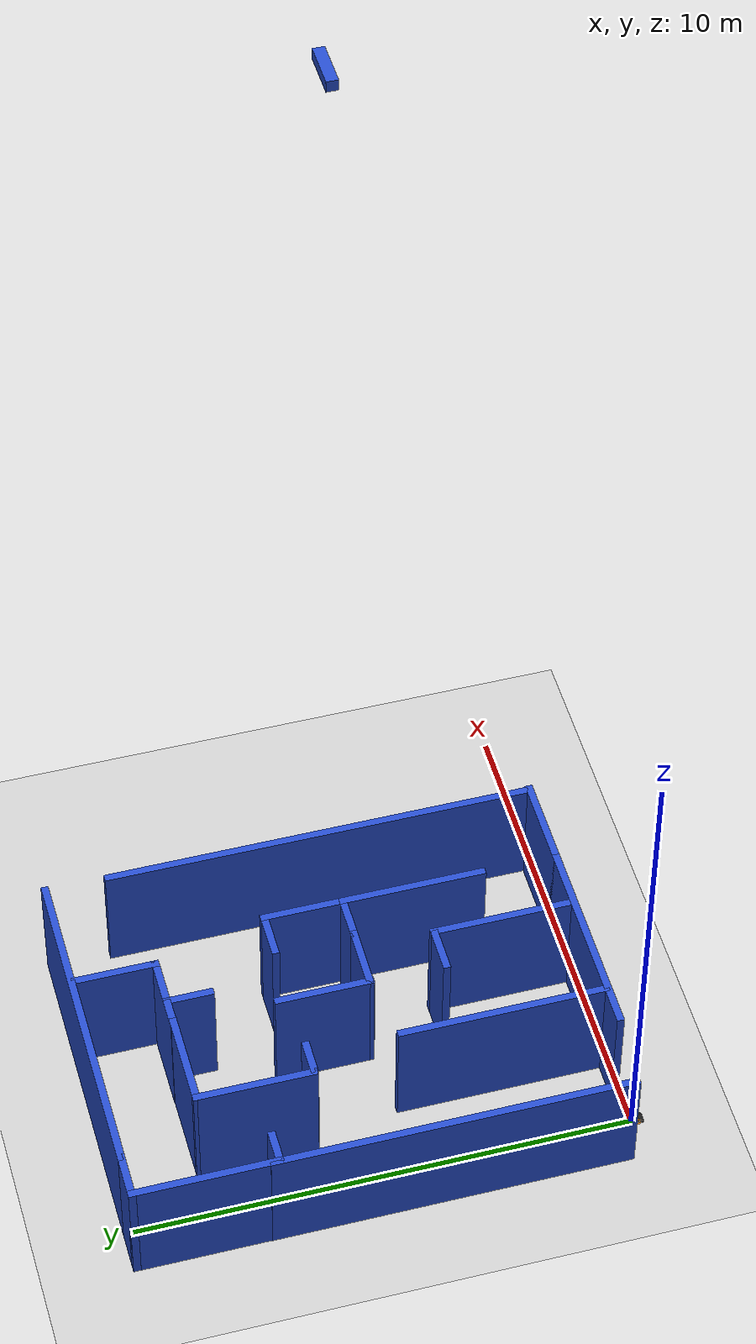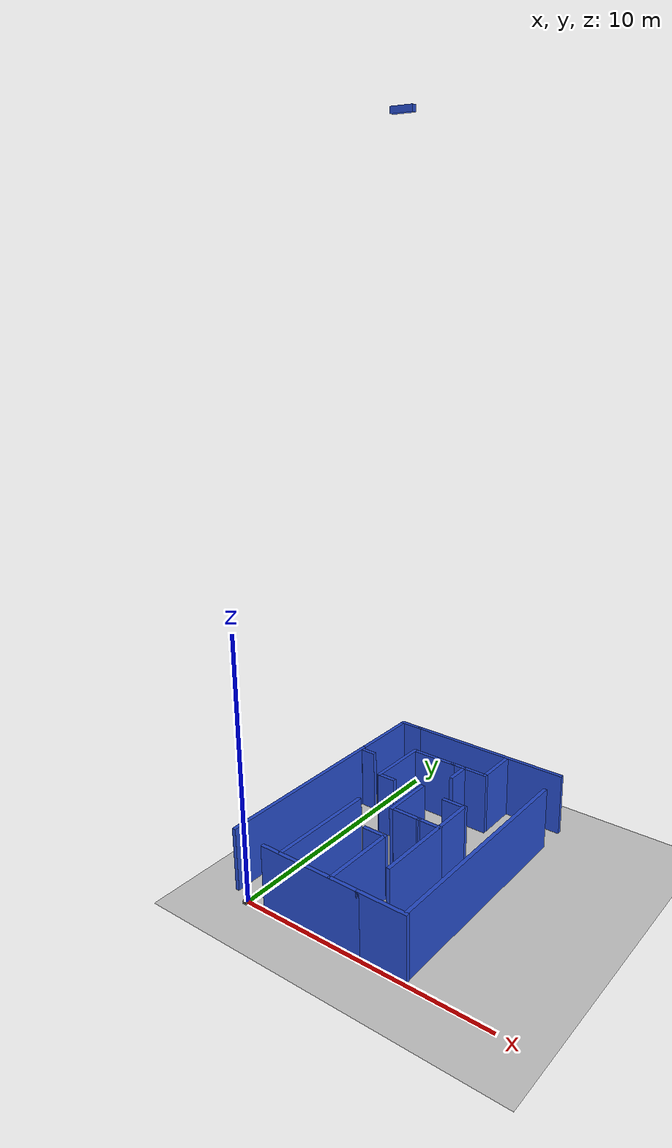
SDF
<sdf version="1.7">
 <world name="default">
  <light name="sun" type="directional">
   <pose>0 0 10 0 -0 0</pose>
   <diffuse>0.8 0.8 0.8 1</diffuse>
   <specular>0.2 0.2 0.2 1</specular>
   <attenuation>
    <range>1000</range>
    <constant>0.9</constant>
    <linear>0.01</linear>
    <quadratic>0.001</quadratic>
   </attenuation>
   <direction>-0.5 0.1 -0.9</direction>
   <spot><inner_angle>0</inner_angle><outer_angle>0</outer_angle><falloff>0</falloff></spot>
  </light>
  <model name="ground_plane">
   <static>1</static>
   <link name="link">
    <collision name="collision">
     <geometry><plane><normal>0 0 1</normal><size>100 100</size></plane></geometry>
     <surface><friction><ode><mu>100</mu><mu2>50</mu2></ode></friction></surface>
    </collision>
    <visual name="visual">
     <cast_shadows>0</cast_shadows>
     <geometry><plane><normal>0 0 1</normal><size>100 100</size></plane></geometry>
     <material>
      <script><uri>file://media/materials/scripts/gazebo.material</uri><name>Gazebo/Grey</name></script>
     </material>
    </visual>
   </link>
  </model>
  <gravity>0 0 -9.8</gravity>
  <magnetic_field>6e-06 2.3e-05 -4.2e-05</magnetic_field>
  <atmosphere type="adiabatic"/>
  <physics type="ode">
   <max_step_size>0.001</max_step_size>
   <real_time_factor>1</real_time_factor>
   <real_time_update_rate>1000</real_time_update_rate>
  </physics>
  <scene><ambient>0.4 0.4 0.4 1</ambient><background>0.7 0.7 0.7 1</background><shadows>0</shadows></scene>
  <spherical_coordinates>
   <surface_model>EARTH_WGS84</surface_model>
   <latitude_deg>0</latitude_deg>
   <longitude_deg>0</longitude_deg>
   <elevation>0</elevation>
   <heading_deg>0</heading_deg>
  </spherical_coordinates>
  <model name="maze_bot">
   <link name="base_footprint">
    <inertial>
     <pose>0 0 0.1 0 -0 0</pose>
     <mass>2</mass>
     <inertia><ixx>0.00355</ixx><ixy>0</ixy><ixz>0</ixz><iyy>0.01265</iyy><iyz>0</iyz><izz>0.013832</izz></inertia>
    </inertial>
    <collision name="base_footprint_fixed_joint_lump__base_collision">
     <geometry><mesh><scale>1 1 1</scale><uri>model://maze_bot/meshes/base_link.stl</uri></mesh></geometry>
    </collision>
    <visual name="base_footprint_fixed_joint_lump__base_visual">
     <geometry><mesh><scale>1 1 1</scale><uri>model://maze_bot/meshes/base_link.stl</uri></mesh></geometry>
     <material>
      <script><name>Gazebo/Black</name><uri>file://media/materials/scripts/gazebo.material</uri></script>
     </material>
    </visual>
    <sensor name="Botcamera" type="camera">
     <update_rate>30</update_rate>
     <camera name="head">
      <horizontal_fov>1.39626</horizontal_fov>
      <image><width>800</width><height>800</height><format>R8G8B8</format></image>
      <clip><near>0.02</near><far>300</far></clip>
      <noise><type>gaussian</type><mean>0</mean><stddev>0.007</stddev></noise>
     </camera>
     <plugin name="camera_controller" filename="libgazebo_ros_camera.so">
      <alwaysOn>1</alwaysOn>
      <updateRate>0.0</updateRate>
      <cameraName>/Botcamera</cameraName>
      <imageTopicName>image_raw</imageTopicName>
      <cameraInfoTopicName>camera_info</cameraInfoTopicName>
      <frameName>camera_link</frameName>
      <hackBaseline>0.07</hackBaseline>
     </plugin>
     <pose>-0.16 0 0.08 0 -0 3.14</pose>
    </sensor>
   </link>
   <joint name="caster_joint" type="revolute">
    <pose relative_to="base_footprint">-0.14 -0.007 -0.03 0 -0 0</pose>
    <parent>base_footprint</parent>
    <child>caster</child>
    <axis>
     <xyz>0 0 1</xyz>
     <limit><lower>-1e+16</lower><upper>1e+16</upper></limit>
     <dynamics><spring_reference>0</spring_reference><spring_stiffness>0</spring_stiffness></dynamics>
    </axis>
   </joint>
   <link name="caster">
    <pose relative_to="caster_joint">0 0 0 0 -0 0</pose>
    <inertial>
     <mass>0.75</mass>
     <inertia>
      <ixx>0.0001295</ixx>
      <ixy>0</ixy>
      <ixz>0</ixz>
      <iyy>0.0001295</iyy>
      <iyz>0</iyz>
      <izz>0.000199322</izz>
     </inertia>
    </inertial>
    <collision name="caster_collision">
     <geometry><mesh><scale>1 1 1</scale><uri>model://maze_bot/meshes/front_caster.stl</uri></mesh></geometry>
    </collision>
    <visual name="caster_visual">
     <geometry><mesh><scale>1 1 1</scale><uri>model://maze_bot/meshes/front_caster.stl</uri></mesh></geometry>
     <material>
      <script><name>Gazebo/White</name><uri>file://media/materials/scripts/gazebo.material</uri></script>
     </material>
    </visual>
   </link>
   <joint name="wheel_left_joint" type="revolute">
    <pose relative_to="base_footprint">0.09 -0.1 0.04 0 -0 3.14</pose>
    <parent>base_footprint</parent>
    <child>wheel_left</child>
    <axis>
     <xyz>0 1 0</xyz>
     <limit><lower>-1e+16</lower><upper>1e+16</upper></limit>
     <dynamics><spring_reference>0</spring_reference><spring_stiffness>0</spring_stiffness></dynamics>
    </axis>
   </joint>
   <link name="wheel_left">
    <pose relative_to="wheel_left_joint">0 0 0 0 -0 0</pose>
    <inertial>
     <mass>0.75</mass>
     <inertia>
      <ixx>0.00144422</ixx>
      <ixy>0</ixy>
      <ixz>0</ixz>
      <iyy>0.00280875</iyy>
      <iyz>0</iyz>
      <izz>0.00144422</izz>
     </inertia>
    </inertial>
    <collision name="wheel_left_collision">
     <geometry><mesh><scale>1 1 1</scale><uri>model://maze_bot/meshes/wheel_l.stl</uri></mesh></geometry>
    </collision>
    <visual name="wheel_left_visual">
     <geometry><mesh><scale>1 1 1</scale><uri>model://maze_bot/meshes/wheel_l.stl</uri></mesh></geometry>
     <material>
      <script><name>Gazebo/Orange</name><uri>file://media/materials/scripts/gazebo.material</uri></script>
     </material>
    </visual>
   </link>
   <joint name="wheel_right_joint" type="revolute">
    <pose relative_to="base_footprint">0.09 0.085 0.04 0 -0 0</pose>
    <parent>base_footprint</parent>
    <child>wheel_right</child>
    <axis>
     <xyz>0 -1 0</xyz>
     <limit><lower>-1e+16</lower><upper>1e+16</upper></limit>
     <dynamics><spring_reference>0</spring_reference><spring_stiffness>0</spring_stiffness></dynamics>
    </axis>
   </joint>
   <link name="wheel_right">
    <pose relative_to="wheel_right_joint">0 0 0 0 -0 0</pose>
    <inertial>
     <mass>0.75</mass>
     <inertia>
      <ixx>0.00144422</ixx>
      <ixy>0</ixy>
      <ixz>0</ixz>
      <iyy>0.00280875</iyy>
      <iyz>0</iyz>
      <izz>0.00144422</izz>
     </inertia>
    </inertial>
    <collision name="wheel_right_collision">
     <geometry><mesh><scale>1 1 1</scale><uri>model://maze_bot/meshes/wheel_r.stl</uri></mesh></geometry>
    </collision>
    <visual name="wheel_right_visual">
     <geometry><mesh><scale>1 1 1</scale><uri>model://maze_bot/meshes/wheel_r.stl</uri></mesh></geometry>
     <material>
      <script><name>Gazebo/Orange</name><uri>file://media/materials/scripts/gazebo.material</uri></script>
     </material>
    </visual>
   </link>
   <static>0</static>
   <plugin name="gazebo_base_controller" filename="libgazebo_ros_diff_drive.so">
    <odometry_frame>odom</odometry_frame>
    <commandTopic>cmd_vel</commandTopic>
    <publish_odom>1</publish_odom>
    <publish_odom_tf>1</publish_odom_tf>
    <update_rate>15.0</update_rate>
    <left_joint>wheel_left_joint</left_joint>
    <right_joint>wheel_right_joint</right_joint>
    <wheel_separation>0.8</wheel_separation>
    <wheel_diameter>0.3</wheel_diameter>
    <max_wheel_acceleration>0.7</max_wheel_acceleration>
    <robotBaseFrame>base</robotBaseFrame>
   </plugin>
   <pose>0.004378 -0.014617 0.035376 0.000297 0.059663 -1.6037</pose>
  </model>
  <model name="Maze">
   <pose>2.94361 5.1356 0 0 -0 0</pose>
   <link name="Wall_21">
    <collision name="Wall_21_Collision">
     <geometry><box><size>4.25 0.15 2.5</size></box></geometry>
     <pose>0 0 1.25 0 -0 0</pose>
    </collision>
    <visual name="Wall_21_Visual">
     <pose>0 0 1.25 0 -0 0</pose>
     <geometry><box><size>4.25 0.15 2.5</size></box></geometry>
     <material>
      <script><uri>file://media/materials/scripts/gazebo.material</uri><name>Gazebo/Blue</name></script>
      <ambient>0.996078 0.47451 0.0196078 1</ambient>
     </material>
     <meta><layer>0</layer></meta>
    </visual>
    <pose>-0.166584 -4.99211 0 0 -0 0</pose>
   </link>
   <link name="Wall_23">
    <collision name="Wall_23_Collision">
     <geometry><box><size>4.25 0.15 2.5</size></box></geometry>
     <pose>0 0 1.25 0 -0 0</pose>
    </collision>
    <visual name="Wall_23_Visual">
     <pose>0 0 1.25 0 -0 0</pose>
     <geometry><box><size>4.25 0.15 2.5</size></box></geometry>
     <material>
      <script><uri>file://media/materials/scripts/gazebo.material</uri><name>Gazebo/Blue</name></script>
      <ambient>0 0 0 1</ambient>
     </material>
     <meta><layer>0</layer></meta>
    </visual>
    <pose>-1.47697 -2.88891 0 0 -0 1.5708</pose>
   </link>
   <link name="Wall_25">
    <collision name="Wall_25_Collision">
     <geometry><box><size>7.25 0.15 2.5</size></box></geometry>
     <pose>0 0 1.25 0 -0 0</pose>
    </collision>
    <visual name="Wall_25_Visual">
     <pose>0 0 1.25 0 -0 0</pose>
     <geometry><box><size>7.25 0.15 2.5</size></box></geometry>
     <material>
      <script><uri>file://media/materials/scripts/gazebo.material</uri><name>Gazebo/Blue</name></script>
      <ambient>0.996078 0.47451 0.0196078 1</ambient>
     </material>
     <meta><layer>0</layer></meta>
    </visual>
    <pose>-3.73341 -1.28759 0 0 -0 1.5708</pose>
   </link>
   <link name="Wall_30">
    <collision name="Wall_30_Collision">
     <geometry><box><size>0.75 0.15 2.5</size></box></geometry>
     <pose>0 0 1.25 0 -0 0</pose>
    </collision>
    <visual name="Wall_30_Visual">
     <pose>0 0 1.25 0 -0 0</pose>
     <geometry><box><size>0.75 0.15 2.5</size></box></geometry>
     <material>
      <script><uri>file://media/materials/scripts/gazebo.material</uri><name>Gazebo/Blue</name></script>
      <ambient>0 0 0 1</ambient>
     </material>
     <meta><layer>0</layer></meta>
    </visual>
    <pose>-1.56741 0.99221 0 0 -0 0</pose>
   </link>
   <link name="Wall_34">
    <collision name="Wall_34_Collision">
     <geometry><box><size>1.3428 0.15 2.5</size></box></geometry>
     <pose>0 0 1.25 0 -0 0</pose>
    </collision>
    <visual name="Wall_34_Visual">
     <pose>0 0 1.25 0 -0 0</pose>
     <geometry><box><size>1.3428 0.15 2.5</size></box></geometry>
     <material>
      <script><uri>file://media/materials/scripts/gazebo.material</uri><name>Gazebo/Blue</name></script>
      <ambient>0 0 0 1</ambient>
     </material>
     <meta><layer>0</layer></meta>
    </visual>
    <pose>0.487086 -0.59755 0 0 -0 -0.009643</pose>
   </link>
   <link name="Wall_35">
    <collision name="Wall_35_Collision">
     <geometry><box><size>1 0.15 2.5</size></box></geometry>
     <pose>0 0 1.25 0 -0 0</pose>
    </collision>
    <visual name="Wall_35_Visual">
     <pose>0 0 1.25 0 -0 0</pose>
     <geometry><box><size>1 0.15 2.5</size></box></geometry>
     <material>
      <script><uri>file://media/materials/scripts/gazebo.material</uri><name>Gazebo/Blue</name></script>
      <ambient>0 0 0 1</ambient>
     </material>
     <meta><layer>0</layer></meta>
    </visual>
    <pose>1.50837 -0.6033 0 0 -0 0</pose>
   </link>
   <link name="Wall_36">
    <collision name="Wall_36_Collision">
     <geometry><box><size>1.75 0.15 2.5</size></box></geometry>
     <pose>0 0 1.25 0 -0 0</pose>
    </collision>
    <visual name="Wall_36_Visual">
     <pose>0 0 1.25 0 -0 0</pose>
     <geometry><box><size>1.75 0.15 2.5</size></box></geometry>
     <material>
      <script><uri>file://media/materials/scripts/gazebo.material</uri><name>Gazebo/Blue</name></script>
      <ambient>0 0 0 1</ambient>
     </material>
     <meta><layer>0</layer></meta>
    </visual>
    <pose>1.93337 0.1967 0 0 -0 1.5708</pose>
   </link>
   <link name="Wall_37">
    <collision name="Wall_37_Collision">
     <geometry><box><size>1 0.15 2.5</size></box></geometry>
     <pose>0 0 1.25 0 -0 0</pose>
    </collision>
    <visual name="Wall_37_Visual">
     <pose>0 0 1.25 0 -0 0</pose>
     <geometry><box><size>1 0.15 2.5</size></box></geometry>
     <material>
      <script><uri>file://media/materials/scripts/gazebo.material</uri><name>Gazebo/Blue</name></script>
      <ambient>0 0 0 1</ambient>
     </material>
     <meta><layer>0</layer></meta>
    </visual>
    <pose>1.50837 0.9967 0 0 -0 3.14159</pose>
   </link>
   <link name="Wall_39">
    <collision name="Wall_39_Collision">
     <geometry><box><size>3 0.15 2.5</size></box></geometry>
     <pose>0 0 1.25 0 -0 0</pose>
    </collision>
    <visual name="Wall_39_Visual">
     <pose>0 0 1.25 0 -0 0</pose>
     <geometry><box><size>3 0.15 2.5</size></box></geometry>
     <material>
      <script><uri>file://media/materials/scripts/gazebo.material</uri><name>Gazebo/Blue</name></script>
      <ambient>0 0 0 1</ambient>
     </material>
     <meta><layer>0</layer></meta>
    </visual>
    <pose>1.93337 -2.0283 0 0 -0 -1.5708</pose>
   </link>
   <link name="Wall_41">
    <collision name="Wall_41_Collision">
     <geometry><box><size>3 0.15 2.5</size></box></geometry>
     <pose>0 0 1.25 0 -0 0</pose>
    </collision>
    <visual name="Wall_41_Visual">
     <pose>0 0 1.25 0 -0 0</pose>
     <geometry><box><size>3 0.15 2.5</size></box></geometry>
     <material>
      <script><uri>file://media/materials/scripts/gazebo.material</uri><name>Gazebo/Blue</name></script>
      <ambient>0 0 0 1</ambient>
     </material>
     <meta><layer>0</layer></meta>
    </visual>
    <pose>0.727679 -3.55281 0 0 -0 1.5708</pose>
   </link>
   <link name="Wall_43">
    <collision name="Wall_43_Collision">
     <geometry><box><size>1 0.15 2.5</size></box></geometry>
     <pose>0 0 1.25 0 -0 0</pose>
    </collision>
    <visual name="Wall_43_Visual">
     <pose>0 0 1.25 0 -0 0</pose>
     <geometry><box><size>1 0.15 2.5</size></box></geometry>
     <material>
      <script><uri>file://media/materials/scripts/gazebo.material</uri><name>Gazebo/Blue</name></script>
      <ambient>0 0 0 1</ambient>
     </material>
     <meta><layer>0</layer></meta>
    </visual>
    <pose>0.302679 -2.12782 0 0 -0 3.14159</pose>
   </link>
   <link name="Wall_46">
    <collision name="Wall_46_Collision">
     <geometry><box><size>1.64061 0.15 2.5</size></box></geometry>
     <pose>0 0 1.25 0 -0 0</pose>
    </collision>
    <visual name="Wall_46_Visual">
     <pose>0 0 1.25 0 -0 0</pose>
     <geometry><box><size>1.64061 0.15 2.5</size></box></geometry>
     <material>
      <script><uri>file://media/materials/scripts/gazebo.material</uri><name>Gazebo/Blue</name></script>
      <ambient>0 0 0 1</ambient>
     </material>
     <meta><layer>0</layer></meta>
    </visual>
    <pose>0.633461 3.31645 0 0 -0 0</pose>
   </link>
   <link name="Wall_52">
    <collision name="Wall_52_Collision">
     <geometry><box><size>2.44702 0.15 2.5</size></box></geometry>
     <pose>0 0 1.25 0 -0 0</pose>
    </collision>
    <visual name="Wall_52_Visual">
     <pose>0 0 1.25 0 -0 0</pose>
     <geometry><box><size>2.44702 0.15 2.5</size></box></geometry>
     <material>
      <script><uri>file://media/materials/scripts/gazebo.material</uri><name>Gazebo/Blue</name></script>
      <ambient>0 0 0 1</ambient>
     </material>
     <meta><layer>0</layer></meta>
    </visual>
    <pose>-1.91791 2.16081 0 0 -0 1.56844</pose>
   </link>
   <link name="Wall_53">
    <collision name="Wall_53_Collision">
     <geometry><box><size>2 0.15 2.5</size></box></geometry>
     <pose>0 0 1.25 0 -0 0</pose>
    </collision>
    <visual name="Wall_53_Visual">
     <pose>0 0 1.25 0 -0 0</pose>
     <geometry><box><size>2 0.15 2.5</size></box></geometry>
     <material>
      <script><uri>file://media/materials/scripts/gazebo.material</uri><name>Gazebo/Blue</name></script>
      <ambient>0 0 0 1</ambient>
     </material>
     <meta><layer>0</layer></meta>
    </visual>
    <pose>-0.99021 3.30921 0 0 -0 0</pose>
   </link>
   <link name="Wall_61">
    <collision name="Wall_61_Collision">
     <geometry><box><size>1 0.15 2.5</size></box></geometry>
     <pose>0 0 1.25 0 -0 0</pose>
    </collision>
    <visual name="Wall_61_Visual">
     <pose>0 0 1.25 0 -0 0</pose>
     <geometry><box><size>1 0.15 2.5</size></box></geometry>
     <material>
      <script><uri>file://media/materials/scripts/gazebo.material</uri><name>Gazebo/Blue</name></script>
      <ambient>0.996078 0.47451 0.0196078 1</ambient>
     </material>
     <meta><layer>0</layer></meta>
    </visual>
    <pose>-3.30144 4.99211 0 0 -0 3.14159</pose>
   </link>
   <link name="Wall_63">
    <collision name="Wall_63_Collision">
     <geometry><box><size>3 0.15 2.5</size></box></geometry>
     <pose>0 0 1.25 0 -0 0</pose>
    </collision>
    <visual name="Wall_63_Visual">
     <pose>0 0 1.25 0 -0 0</pose>
     <geometry><box><size>3 0.15 2.5</size></box></geometry>
     <material>
      <script><uri>file://media/materials/scripts/gazebo.material</uri><name>Gazebo/Blue</name></script>
      <ambient>0.996078 0.47451 0.0196078 1</ambient>
     </material>
     <meta><layer>0</layer></meta>
    </visual>
    <pose>-3.72644 3.56711 0 0 -0 -1.5708</pose>
   </link>
   <link name="Wall_65">
    <collision name="Wall_65_Collision">
     <geometry><box><size>6.75 0.15 2.5</size></box></geometry>
     <pose>0 0 1.25 0 -0 0</pose>
    </collision>
    <visual name="Wall_65_Visual">
     <pose>0 0 1.25 0 -0 0</pose>
     <geometry><box><size>6.75 0.15 2.5</size></box></geometry>
     <material>
      <script><uri>file://media/materials/scripts/gazebo.material</uri><name>Gazebo/Blue</name></script>
      <ambient>0.996078 0.47451 0.0196078 1</ambient>
     </material>
     <meta><layer>0</layer></meta>
    </visual>
    <pose>0.42356 4.99211 0 0 -0 0</pose>
   </link>
   <link name="Wall_67">
    <collision name="Wall_67_Collision">
     <geometry><box><size>8.75 0.15 2.5</size></box></geometry>
     <pose>0 0 1.25 0 -0 0</pose>
    </collision>
    <visual name="Wall_67_Visual">
     <pose>0 0 1.25 0 -0 0</pose>
     <geometry><box><size>8.75 0.15 2.5</size></box></geometry>
     <material>
      <script><uri>file://media/materials/scripts/gazebo.material</uri><name>Gazebo/Blue</name></script>
      <ambient>0.996078 0.47451 0.0196078 1</ambient>
     </material>
     <meta><layer>0</layer></meta>
    </visual>
    <pose>3.70855 -0.575644 0 0 -0 -1.5708</pose>
   </link>
   <link name="Wall_69">
    <collision name="Wall_69_Collision">
     <geometry><box><size>2 0.15 2.5</size></box></geometry>
     <pose>0 0 1.25 0 -0 0</pose>
    </collision>
    <visual name="Wall_69_Visual">
     <pose>0 0 1.25 0 -0 0</pose>
     <geometry><box><size>2 0.15 2.5</size></box></geometry>
     <material>
      <script><uri>file://media/materials/scripts/gazebo.material</uri><name>Gazebo/Blue</name></script>
      <ambient>0.996078 0.47451 0.0196078 1</ambient>
     </material>
     <meta><layer>0</layer></meta>
    </visual>
    <pose>2.80842 -4.99211 0 0 -0 0</pose>
   </link>
   <link name="Wall_71">
    <collision name="Wall_71_Collision">
     <geometry><box><size>0.75 0.15 2.5</size></box></geometry>
     <pose>0 0 1.25 0 -0 0</pose>
    </collision>
    <visual name="Wall_71_Visual">
     <pose>0 0 1.25 0 -0 0</pose>
     <geometry><box><size>0.75 0.15 2.5</size></box></geometry>
     <material>
      <script><uri>file://media/materials/scripts/gazebo.material</uri><name>Gazebo/Blue</name></script>
      <ambient>0 0 0 1</ambient>
     </material>
     <meta><layer>0</layer></meta>
    </visual>
    <pose>-3.42644 2.14211 0 0 -0 0</pose>
   </link>
   <link name="Wall_73">
    <collision name="Wall_73_Collision">
     <geometry><box><size>2 0.15 2.5</size></box></geometry>
     <pose>0 0 1.25 0 -0 0</pose>
    </collision>
    <visual name="Wall_73_Visual">
     <pose>0 0 1.25 0 -0 0</pose>
     <geometry><box><size>2 0.15 2.5</size></box></geometry>
     <material>
      <script><uri>file://media/materials/scripts/gazebo.material</uri><name>Gazebo/Blue</name></script>
      <ambient>0 0 0 1</ambient>
     </material>
     <meta><layer>0</layer></meta>
    </visual>
    <pose>-0.109202 0.3217 0 0 -0 1.5708</pose>
   </link>
   <link name="Wall_79">
    <collision name="Wall_79_Collision">
     <geometry><box><size>1.75 0.15 2.5</size></box></geometry>
     <pose>0 0 1.25 0 -0 0</pose>
    </collision>
    <visual name="Wall_79_Visual">
     <pose>0 0 1.25 0 -0 0</pose>
     <geometry><box><size>1.75 0.15 2.5</size></box></geometry>
     <material>
      <script><uri>file://media/materials/scripts/gazebo.material</uri><name>Gazebo/Blue</name></script>
      <ambient>0 0 0 1</ambient>
     </material>
     <meta><layer>0</layer></meta>
    </visual>
    <pose>1.37874 4.11646 0 0 -0 1.5708</pose>
   </link>
   <link name="Wall_81">
    <collision name="Wall_81_Collision">
     <geometry><box><size>1 0.15 2.5</size></box></geometry>
     <pose>0 0 1.25 0 -0 0</pose>
    </collision>
    <visual name="Wall_81_Visual">
     <pose>0 0 1.25 0 -0 0</pose>
     <geometry><box><size>1 0.15 2.5</size></box></geometry>
     <material>
      <script><uri>file://media/materials/scripts/gazebo.material</uri><name>Gazebo/Blue</name></script>
      <ambient>0 0 0  1</ambient>
     </material>
     <meta><layer>0</layer></meta>
    </visual>
    <pose>0.438493 2.88286 0 0 -0 -1.5708</pose>
   </link>
   <static>1</static>
  </model>
  <model name="satellite">
   <link name="link_0">
    <inertial>
     <mass>1</mass>
     <inertia>
      <ixx>0.166667</ixx>
      <ixy>0</ixy>
      <ixz>0</ixz>
      <iyy>0.166667</iyy>
      <iyz>0</iyz>
      <izz>0.166667</izz>
     </inertia>
    </inertial>
    <pose>0 2e-06 4.4e-05 0 -0 0</pose>
    <visual name="visual">
     <geometry><box><size>0.8 0.2 0.2</size></box></geometry>
     <material>
      <lighting>1</lighting>
      <script><uri>file://media/materials/scripts/gazebo.material</uri><name>Gazebo/Blue</name></script>
      <shader type="pixel"><normal_map>__default__</normal_map></shader>
      <ambient>0.3 0.3 0.3 1</ambient>
      <diffuse>0.7 0.7 0.7 1</diffuse>
      <specular>0.01 0.01 0.01 1</specular>
      <emissive>0 0 0 1</emissive>
     </material>
     <cast_shadows>0</cast_shadows>
    </visual>
    <collision name="collision">
     <geometry><box><size>0.8 0.2 0.2</size></box></geometry>
     <surface>
      <friction>
       <ode><mu>1</mu><mu2>1</mu2><fdir1>0 0 0</fdir1><slip1>0</slip1><slip2>0</slip2></ode>
       <torsional>
        <coefficient>1</coefficient>
        <patch_radius>0</patch_radius>
        <surface_radius>0</surface_radius>
        <use_patch_radius>1</use_patch_radius>
        <ode><slip>0</slip></ode>
       </torsional>
      </friction>
      <bounce><restitution_coefficient>0</restitution_coefficient><threshold>1e+06</threshold></bounce>
      <contact>
       <collide_without_contact>0</collide_without_contact>
       <collide_without_contact_bitmask>1</collide_without_contact_bitmask>
       <collide_bitmask>1</collide_bitmask>
       <ode>
        <soft_cfm>0</soft_cfm>
        <soft_erp>0.2</soft_erp>
        <kp>1e+13</kp>
        <kd>1</kd>
        <max_vel>0.01</max_vel>
        <min_depth>0</min_depth>
       </ode>
       <bullet>
        <split_impulse>1</split_impulse>
        <split_impulse_penetration_threshold>-0.01</split_impulse_penetration_threshold>
        <soft_cfm>0</soft_cfm>
        <soft_erp>0.2</soft_erp>
        <kp>1e+13</kp>
        <kd>1</kd>
       </bullet>
      </contact>
     </surface>
    </collision>
    <sensor name="upper_camera" type="camera">
     <pose>0 0 0 0 1.57 0</pose>
     <update_rate>30</update_rate>
     <visualize>1</visualize>
     <camera name="head">
      <horizontal_fov>1.0856</horizontal_fov>
      <image><width>1280</width><height>720</height><format>R8G8B8</format></image>
      <clip><near>0.03</near><far>100</far></clip>
      <noise><type>gaussian</type><mean>0</mean><stddev>0.007</stddev></noise>
     </camera>
     <plugin name="camera_controller_upper" filename="libgazebo_ros_camera.so">
      <alwaysOn>1</alwaysOn>
      <updateRate>0.0</updateRate>
      <cameraName>rrbot/camera1</cameraName>
      <imageTopicName>image_raw</imageTopicName>
      <cameraInfoTopicName>camera_info</cameraInfoTopicName>
      <frameName>camera_link</frameName>
      <hackBaseline>0.07</hackBaseline>
      <distortionK1>0.0</distortionK1>
      <distortionK2>0.0</distortionK2>
      <distortionK3>0.0</distortionK3>
      <distortionT1>0.0</distortionT1>
      <distortionT2>0.0</distortionT2>
     </plugin>
    </sensor>
   </link>
   <static>1</static>
   <pose>2.7 5.4 25.4 0 -0 0</pose>
  </model>
 </world>
</sdf>
